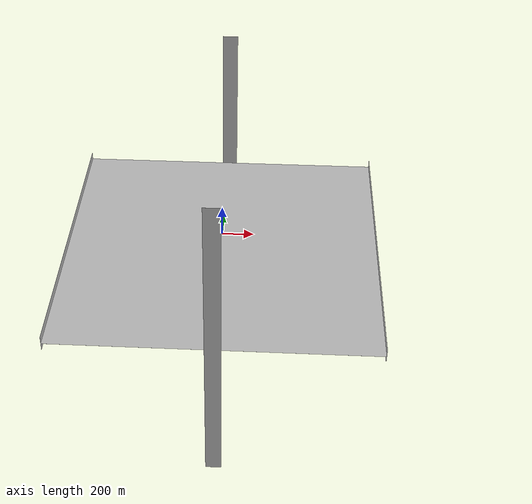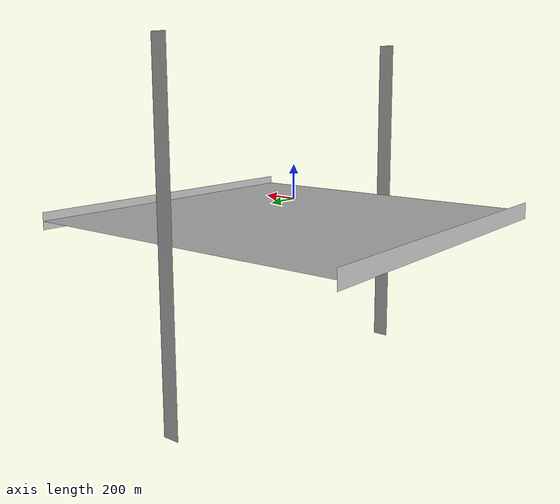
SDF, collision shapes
<?xml version="1.0" ?>
<sdf version="1.4">

<model name="ocean">
  <static>true</static>
  <link name="ocean_link">

  <visual name="ocean_surface">
    <pose>0 0 0 0 0 0</pose>
    <cast_shadows>false</cast_shadows>
    <geometry>
      <mesh>
        <uri>file://Media/models/sea_surface_1000m_x_1000m.dae</uri>
        <scale>2 2 2</scale>
      </mesh>
    </geometry>
    <material>
      <script>
        <uri>file://Media/materials/scripts/waves.material</uri>
        <name>SimpleWaves</name>
      </script>
    </material>
  </visual>

  <visual name="ocean_below">
    <pose>0 0 0 3.14 0 0</pose>
    <cast_shadows>false</cast_shadows>
    <geometry>
      <mesh>
        <uri>file://Media/models/sea_surface_1000m_x_1000m.dae</uri>
        <scale>2 2 2</scale>
      </mesh>
    </geometry>
    <material>
      <script>
        <uri>file://Media/materials/scripts/water.material</uri>
        <name>StaticWater</name>
      </script>
    </material>
  </visual>

  <visual name="seafloor">
    <cast_shadows>false</cast_shadows>
    <pose>0 0 -100 0 0 0</pose>
    <geometry>
      <box>
        <size>2000 2000 .1</size>
      </box>
    </geometry>
    <material>
      <script>
        <uri>file://Media/materials/scripts/sand.material</uri>
        <name>SandAndStones</name>
      </script>
      <emissive>
        0.6 0.6 0.6 1.0
      </emissive>
    </material>
  </visual>

  <collision name="seafloor">
    <pose>0 0 -100 0 0 0</pose>
    <geometry>
      <box>
        <size>2000 2000 .1</size>
      </box>
    </geometry>
  </collision>

  <visual name="north">
    <pose>1000 0 -100 0 -1.5708 0</pose>
    <geometry><plane><normal>0 0 1</normal><size>100 2000</size></plane></geometry>
    <material>
      <script>
        <uri>file://Media/materials/scripts/water.material</uri>
        <name>SeaWall</name>
      </script>
      <emissive>
        0.6 0.6 0.6 1.0
      </emissive>
    </material>
  </visual>

  <collision name="north">
    <pose>1000 0 -100 0 -1.5708 0</pose>
    <geometry><plane><normal>0 0 1</normal><size>100 2000</size></plane></geometry>
  </collision>

  <visual name="south">
    <pose>-1000 0 -100 0 1.5708 0</pose>
    <geometry><plane><normal>0 0 1</normal><size>100 2000</size></plane></geometry>
    <material>
      <script>
        <uri>file://Media/materials/scripts/water.material</uri>
        <name>SeaWall</name>
      </script>
      <emissive>
        0.6 0.6 0.6 1.0
      </emissive>
    </material>
  </visual>

  <collision name="south">
    <pose>-1000 0 -100 0 1.5708 0</pose>
    <geometry><plane><normal>0 0 1</normal><size>100 2000</size></plane></geometry>
  </collision>

  <visual name="west">
    <pose>0 1000 -100 1.5708 0 0</pose>
    <geometry><plane><normal>0 0 1</normal><size>2000 100</size></plane></geometry>
    <material>
      <script>
        <uri>file://Media/materials/scripts/water.material</uri>
        <name>SeaWall</name>
      </script>
      <emissive>
        0.6 0.6 0.6 1.0
      </emissive>
    </material>
  </visual>

  <collision name="west">
    <pose>0 1000 -100 1.5708 0 0</pose>
    <geometry><plane><normal>0 0 1</normal><size>100 2000</size></plane></geometry>
  </collision>

  <visual name="east">
    <pose>0 -1000 -100 -1.5708 0 0</pose>
    <geometry><plane><normal>0 0 1</normal><size>2000 100</size></plane></geometry>
    <material>
      <script>
        <uri>file://Media/materials/scripts/water.material</uri>
        <name>SeaWall</name>
      </script>
      <emissive>
        0.6 0.6 0.6 1.0
      </emissive>
    </material>
  </visual>

  <collision name="east">
    <pose>0 -1000 -100 -1.5708 0 0</pose>
    <geometry><plane><normal>0 0 1</normal><size>100 2000</size></plane></geometry>
  </collision>
  </link>
</model>
</sdf>
